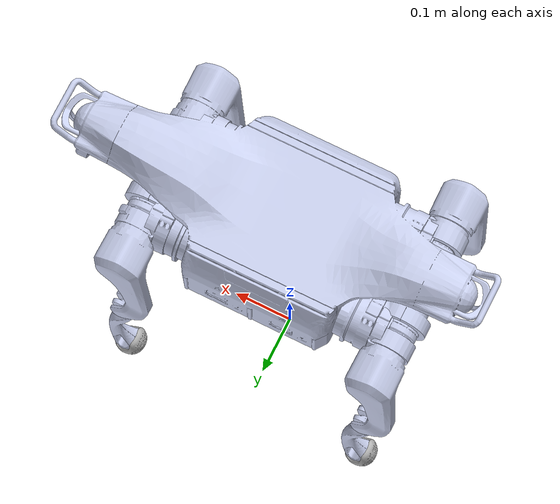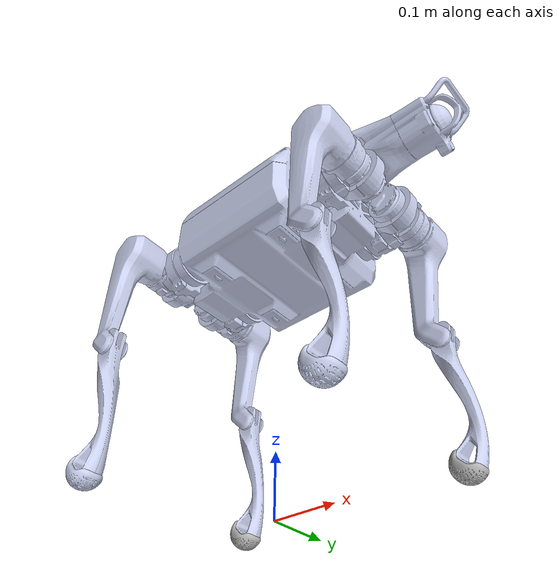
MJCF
<mujoco model="as2">
  <compiler angle="radian" meshdir="./meshes/" />

    <default>
      <default class="hip_joint">
        <joint damping="0.2" armature="0.026" frictionloss="1.0" />
      </default>
      <default class="thigh_joint">
        <joint damping="0.2" armature="0.026" frictionloss="1.0" />
      </default>
      <default class="calf_joint">
        <joint damping="0.5" armature="0.038" frictionloss="2.0" />
      </default>
      <default class="collision">
        <geom group="3" priority="1" condim="6" />
      </default>
      <default class="foot">
      </default>
  </default>

  <asset>
    <mesh name="base_link" content_type="model/stl" file="base_link.STL" />
    <mesh name="FL_hip" content_type="model/stl" file="FL_hip.STL" />
    <mesh name="FL_thigh" content_type="model/stl" file="FL_thigh.STL" />
    <mesh name="FL_calf" content_type="model/stl" file="FL_calf.STL" />
    <mesh name="FL_foot" content_type="model/stl" file="FL_foot.STL" />
    <mesh name="FR_hip" content_type="model/stl" file="FR_hip.STL" />
    <mesh name="FR_thigh" content_type="model/stl" file="FR_thigh.STL" />
    <mesh name="FR_calf" content_type="model/stl" file="FR_calf.STL" />
    <mesh name="FR_foot" content_type="model/stl" file="FR_foot.STL" />
    <mesh name="RL_hip" content_type="model/stl" file="RL_hip.STL" />
    <mesh name="RL_thigh" content_type="model/stl" file="RL_thigh.STL" />
    <mesh name="RL_calf" content_type="model/stl" file="RL_calf.STL" />
    <mesh name="RL_foot" content_type="model/stl" file="RL_foot.STL" />
    <mesh name="RR_hip" content_type="model/stl" file="RR_hip.STL" />
    <mesh name="RR_thigh" content_type="model/stl" file="RR_thigh.STL" />
    <mesh name="RR_calf" content_type="model/stl" file="RR_calf.STL" />
    <mesh name="RR_foot" content_type="model/stl" file="RR_foot.STL" />
  </asset>

  <worldbody>
    <body name="base_link" pos="0 0 0.5">
      <inertial pos="0.045604 -0.0009 0.020368" quat="0.00794069 0.618593 0.00566881 0.785651" mass="8.8" diaginertia="0.152525 0.137384 0.037725" />
      <joint name="floating_base_joint" type="free" />
      <site name="imu" pos="-0.0 0 0.0" />
      <geom type="mesh" contype="0" conaffinity="0" group="1" density="0" rgba="0.79216 0.81961 0.93333 1" mesh="base_link" />
      <geom size="0.1 0.112 0.07" pos="0 0 0.006" type="box" rgba="0.79216 0.81961 0.93333 1" group="3" />
      <geom size="0.043" pos="0.283 0 0.078" rgba="0.79216 0.81961 0.93333 1" group="3" />
      <geom size="0.045 0.03" pos="0.23 0 0.085" quat="0.667463 0 0.744643 0" type="cylinder" rgba="0.79216 0.81961 0.93333 1" group="3" />
      <body name="FL_hip" pos="0.2119 0.06 0">
        <inertial pos="-0.0046547 -0.0088505 3.4235e-05" quat="0.554825 0.563062 0.425623 0.440426" mass="0.695" diaginertia="0.000582434 0.000550283 0.000447303" />
        <joint class="hip_joint" name="FL_hip_joint" pos="0 0 0" axis="1 0 0" range="-0.785 0.785" actuatorfrcrange="-60 60" />
        <geom type="mesh" contype="0" conaffinity="0" group="1" density="0" rgba="0.79216 0.81961 0.93333 1" mesh="FL_hip" />
        <body name="FL_thigh" pos="0 0.1054 0">
          <inertial pos="-0.0060186 -0.024079 -0.0374" quat="0.987997 0.129345 0.0616652 0.0576939" mass="1.25" diaginertia="0.0061413 0.0057051 0.0012124" />
          <joint class="thigh_joint" name="FL_thigh_joint" pos="0 0 0" axis="0 1 0" range="-2 3.492" actuatorfrcrange="-60 60" />
          <geom type="mesh" contype="0" conaffinity="0" group="1" density="0" rgba="0.79216 0.81961 0.93333 1" mesh="FL_thigh" />
          <geom size="0.04 0.05" pos="0 -0.03 0" quat="0.707035 0.707179 0 0" type="cylinder" rgba="0.79216 0.81961 0.93333 1" group="3" />
          <geom size="0.0225 0.015 0.07" pos="-0.02 0 -0.09" quat="0.99875 0 0.0499792 0" type="box" rgba="0.79216 0.81961 0.93333 1" group="3" />
          <geom size="0.005 0.0175 0.02" pos="-0.02 0 -0.21" quat="0.926798 0 -0.375559 0" type="box" rgba="0.79216 0.81961 0.93333 1" group="3" />
          <body name="FL_calf" pos="0 0 -0.212">
            <inertial pos="0.00652661 -6.44517e-08 -0.106839" quat="0.706867 -0.0184087 -0.0184087 0.706867" mass="0.265" diaginertia="0.00175128 0.00172619 5.73076e-05"/>
            <joint class="calf_joint" name="FL_calf_joint" pos="0 0 0" axis="0 1 0" range="-2.7677 -0.8133" actuatorfrcrange="-90 90" />
            <geom type="mesh" contype="0" conaffinity="0" group="1" density="0" rgba="0.79216 0.81961 0.93333 1" mesh="FL_calf" />
            <geom size="0.013 0.025" pos="0.011 0 -0.08" quat="0.989864 0 -0.142018 0" type="cylinder" rgba="0.79216 0.81961 0.93333 1" group="3" />
            <geom size="0.012 0.03" pos="0.0215 0 -0.13" quat="0.99875 0 -0.0499792 0" type="cylinder" rgba="0.79216 0.81961 0.93333 1" group="3" />
            <geom size="0.012 0.0275" pos="0.02 0 -0.185" quat="0.997189 0 0.0749297 0" type="cylinder" rgba="0.79216 0.81961 0.93333 1" group="3" />
            <geom pos="0 0 -0.21344" quat="1 0 0 0" type="mesh" contype="0" conaffinity="0" group="1" density="0" rgba="0.69804 0.69804 0.69804 1" mesh="FL_foot" />
            <geom size="0.028" pos="0 0 -0.21344" rgba="0.69804 0.69804 0.69804 1" group="3" class="foot"/>
          </body>
        </body>
      </body>
      <body name="FR_hip" pos="0.2119 -0.06 0">
        <inertial pos="-0.0046547 0.0088505 3.4234e-05" quat="0.440426 0.425623 0.563062 0.554825" mass="0.695" diaginertia="0.000582434 0.000550283 0.000447303" />
        <joint class="hip_joint" name="FR_hip_joint" pos="0 0 0" axis="1 0 0" range="-0.785 0.785" actuatorfrcrange="-60 60" />
        <geom type="mesh" contype="0" conaffinity="0" group="1" density="0" rgba="0.79216 0.81961 0.93333 1" mesh="FR_hip" />
        <body name="FR_thigh" pos="0 -0.1054 0">
          <inertial pos="-0.0060187 0.02408 -0.037399" quat="0.987996 -0.12935 0.0616633 -0.0577" mass="1.25" diaginertia="0.0061414 0.00570534 0.00121236" />
          <joint class="thigh_joint" name="FR_thigh_joint" pos="0 0 0" axis="0 1 0" range="-2 3.492" actuatorfrcrange="-60 60" />
          <geom type="mesh" contype="0" conaffinity="0" group="1" density="0" rgba="0.79216 0.81961 0.93333 1" mesh="FR_thigh" />
          <geom size="0.04 0.05" pos="0 0.03 0" quat="0.707035 0.707179 0 0" type="cylinder" rgba="0.79216 0.81961 0.93333 1" group="3" />
          <geom size="0.0225 0.015 0.07" pos="-0.02 0 -0.09" quat="0.99875 0 0.0499792 0" type="box" rgba="0.79216 0.81961 0.93333 1" group="3" />
          <geom size="0.005 0.0175 0.02" pos="-0.02 0 -0.21" quat="0.926798 0 -0.375559 0" type="box" rgba="0.79216 0.81961 0.93333 1" group="3" />
          <body name="FR_calf" pos="0 0 -0.212">
            <inertial pos="0.00652661 -7.41026e-08 -0.106839" quat="0.706867 -0.0184087 -0.0184087 0.706867" mass="0.265" diaginertia="0.00175128 0.00172619 5.73076e-05"/>
            <joint class="calf_joint" name="FR_calf_joint" pos="0 0 0" axis="0 1 0" range="-2.7677 -0.8133" actuatorfrcrange="-90 90" />
            <geom type="mesh" contype="0" conaffinity="0" group="1" density="0" rgba="0.79216 0.81961 0.93333 1" mesh="FR_calf" />
            <geom size="0.013 0.025" pos="0.011 0 -0.08" quat="0.989864 0 -0.142018 0" type="cylinder" rgba="0.79216 0.81961 0.93333 1" group="3" />
            <geom size="0.012 0.03" pos="0.0215 0 -0.13" quat="0.99875 0 -0.0499792 0" type="cylinder" rgba="0.79216 0.81961 0.93333 1" group="3" />
            <geom size="0.012 0.0275" pos="0.02 0 -0.185" quat="0.997189 0 0.0749297 0" type="cylinder" rgba="0.79216 0.81961 0.93333 1" group="3" />
            <geom pos="0 0 -0.21344" quat="1 0 0 0" type="mesh" contype="0" conaffinity="0" group="1" density="0" rgba="0.79216 0.81961 0.93333 1" mesh="FR_foot" />
            <geom size="0.028" pos="0 0 -0.21344" rgba="0.79216 0.81961 0.93333 1" group="3" class="foot"/>
          </body>
        </body>
      </body>
      <body name="RL_hip" pos="-0.2119 0.06 0">
        <inertial pos="0.0046637 -0.0088505 -3.8901e-05" quat="0.439127 0.426151 0.562725 0.55579" mass="0.695" diaginertia="0.00058247 0.000550228 0.000447202" />
        <joint class="hip_joint" name="RL_hip_joint" pos="0 0 0" axis="1 0 0" range="-0.785 0.785" actuatorfrcrange="-60 60" />
        <geom type="mesh" contype="0" conaffinity="0" group="1" density="0" rgba="0.79216 0.81961 0.93333 1" mesh="RL_hip" />
        <body name="RL_thigh" pos="0 0.1054 0">
          <inertial pos="-0.0068766 -0.022228 -0.039019" quat="0.990443 0.118947 0.0612549 0.0334983" mass="1.25" diaginertia="0.00621983 0.0058049 0.00118897" />
          <joint class="thigh_joint" name="RL_thigh_joint" pos="0 0 0" axis="0 1 0" range="-1.3 4.19" actuatorfrcrange="-60 60" />
          <geom type="mesh" contype="0" conaffinity="0" group="1" density="0" rgba="0.79216 0.81961 0.93333 1" mesh="RL_thigh" />
          <geom size="0.04 0.05" pos="0 -0.03 0" quat="0.707035 0.707179 0 0" type="cylinder" rgba="0.79216 0.81961 0.93333 1" group="3" />
          <geom size="0.0225 0.015 0.07" pos="-0.02 0 -0.09" quat="0.99875 0 0.0499792 0" type="box" rgba="0.79216 0.81961 0.93333 1" group="3" />
          <geom size="0.005 0.0175 0.02" pos="-0.02 0 -0.21" quat="0.926798 0 -0.375559 0" type="box" rgba="0.79216 0.81961 0.93333 1" group="3" />
          <body name="RL_calf" pos="0 0 -0.212">
            <inertial pos="0.00652661 -6.43322e-08 -0.106839" quat="0.706867 -0.0184087 -0.0184087 0.706867" mass="0.265" diaginertia="0.00175128 0.00172619 5.73076e-05"/>
            <joint class="calf_joint" name="RL_calf_joint" pos="0 0 0" axis="0 1 0" range="-2.7677 -0.8133" actuatorfrcrange="-90 90" />
            <geom type="mesh" contype="0" conaffinity="0" group="1" density="0" rgba="0.79216 0.81961 0.93333 1" mesh="RL_calf" />
            <geom size="0.013 0.025" pos="0.011 0 -0.08" quat="0.989864 0 -0.142018 0" type="cylinder" rgba="0.79216 0.81961 0.93333 1" group="3" />
            <geom size="0.012 0.03" pos="0.0215 0 -0.13" quat="0.99875 0 -0.0499792 0" type="cylinder" rgba="0.79216 0.81961 0.93333 1" group="3" />
            <geom size="0.012 0.0275" pos="0.02 0 -0.185" quat="0.997189 0 0.0749297 0" type="cylinder" rgba="0.79216 0.81961 0.93333 1" group="3" />
            <geom pos="0 0 -0.21344" quat="1 0 0 0" type="mesh" contype="0" conaffinity="0" group="1" density="0" rgba="0.69804 0.69804 0.69804 1" mesh="RL_foot" />
            <geom size="0.028" pos="0 0 -0.21344" rgba="0.69804 0.69804 0.69804 1" group="3" class="foot"/>
          </body>
        </body>
      </body>
      <body name="RR_hip" pos="-0.2119 -0.06 0">
        <inertial pos="0.0046637 0.0088505 -3.89e-05" quat="0.55579 0.562725 0.426151 0.439127" mass="0.695" diaginertia="0.00058247 0.000550228 0.000447202" />
        <joint class="hip_joint" name="RR_hip_joint" pos="0 0 0" axis="1 0 0" range="-0.785 0.785" actuatorfrcrange="-60 60" />
        <geom type="mesh" contype="0" conaffinity="0" group="1" density="0" rgba="0.79216 0.81961 0.93333 1" mesh="RR_hip" />
        <body name="RR_thigh" pos="0 -0.1054 0">
          <inertial pos="-0.0068763 0.022228 -0.039019" quat="0.990443 -0.118945 0.0612534 -0.0335016" mass="1.25" diaginertia="0.00621993 0.00580499 0.00118898" />
          <joint class="thigh_joint" name="RR_thigh_joint" pos="0 0 0" axis="0 1 0" range="-1.3 4.19" actuatorfrcrange="-60 60" />
          <geom type="mesh" contype="0" conaffinity="0" group="1" density="0" rgba="0.79216 0.81961 0.93333 1" mesh="RR_thigh" />
          <geom size="0.04 0.05" pos="0 0.03 0" quat="0.707035 0.707179 0 0" type="cylinder" rgba="0.79216 0.81961 0.93333 1" group="3" />
          <geom size="0.0225 0.015 0.07" pos="-0.02 0 -0.09" quat="0.99875 0 0.0499792 0" type="box" rgba="0.79216 0.81961 0.93333 1" group="3" />
          <geom size="0.005 0.0175 0.02" pos="-0.02 0 -0.21" quat="0.926798 0 -0.375559 0" type="box" rgba="0.79216 0.81961 0.93333 1" group="3" />
          <body name="RR_calf" pos="0 0 -0.212">
            <inertial pos="0.00652661 -7.19383e-08 -0.106839" quat="0.706867 -0.0184087 -0.0184087 0.706867" mass="0.265" diaginertia="0.00175128 0.00172619 5.73076e-05"/>
            <joint class="calf_joint" name="RR_calf_joint" pos="0 0 0" axis="0 1 0" range="-2.7677 -0.8133" actuatorfrcrange="-90 90" />
            <geom type="mesh" contype="0" conaffinity="0" group="1" density="0" rgba="0.79216 0.81961 0.93333 1" mesh="RR_calf" />
            <geom size="0.013 0.025" pos="0.011 0 -0.08" quat="0.989864 0 -0.142018 0" type="cylinder" rgba="0.79216 0.81961 0.93333 1" group="3" />
            <geom size="0.012 0.03" pos="0.0215 0 -0.13" quat="0.99875 0 -0.0499792 0" type="cylinder" rgba="0.79216 0.81961 0.93333 1" group="3" />
            <geom size="0.012 0.0275" pos="0.02 0 -0.185" quat="0.997189 0 0.0749297 0" type="cylinder" rgba="0.79216 0.81961 0.93333 1" group="3" />
            <geom pos="0 0 -0.21344" quat="1 0 0 0" type="mesh" contype="0" conaffinity="0" group="1" density="0" rgba="0.79216 0.81961 0.93333 1" mesh="RR_foot" />
            <geom size="0.028" pos="0 0 -0.21344" rgba="0.79216 0.81961 0.93333 1" group="3" class="foot"/>
          </body>
        </body>
      </body>
    </body>
  </worldbody>
  <actuator>
    <motor ctrlrange="-60 60" name="FR_hip" joint="FR_hip_joint" />
    <motor ctrlrange="-60 60" name="FR_thigh" joint="FR_thigh_joint" />
    <motor ctrlrange="-90 90" name="FR_calf" joint="FR_calf_joint" />
    <motor ctrlrange="-60 60" name="FL_hip" joint="FL_hip_joint" />
    <motor ctrlrange="-60 60" name="FL_thigh" joint="FL_thigh_joint" />
    <motor ctrlrange="-90 90" name="FL_calf" joint="FL_calf_joint" />
    <motor ctrlrange="-60 60" name="RR_hip" joint="RR_hip_joint" />
    <motor ctrlrange="-60 60" name="RR_thigh" joint="RR_thigh_joint" />
    <motor ctrlrange="-90 90" name="RR_calf" joint="RR_calf_joint" />
    <motor ctrlrange="-60 60" name="RL_hip" joint="RL_hip_joint" />
    <motor ctrlrange="-60 60" name="RL_thigh" joint="RL_thigh_joint" />
    <motor ctrlrange="-90 90" name="RL_calf" joint="RL_calf_joint" />
  </actuator>

  <sensor>
    <jointpos name="FR_hip_pos" joint="FR_hip_joint" />
    <jointpos name="FR_thigh_pos" joint="FR_thigh_joint" />
    <jointpos name="FR_calf_pos" joint="FR_calf_joint" />
    <jointpos name="FL_hip_pos" joint="FL_hip_joint" />
    <jointpos name="FL_thigh_pos" joint="FL_thigh_joint" />
    <jointpos name="FL_calf_pos" joint="FL_calf_joint" />
    <jointpos name="RR_hip_pos" joint="RR_hip_joint" />
    <jointpos name="RR_thigh_pos" joint="RR_thigh_joint" />
    <jointpos name="RR_calf_pos" joint="RR_calf_joint" />
    <jointpos name="RL_hip_pos" joint="RL_hip_joint" />
    <jointpos name="RL_thigh_pos" joint="RL_thigh_joint" />
    <jointpos name="RL_calf_pos" joint="RL_calf_joint" />

    <jointvel name="FR_hip_vel" joint="FR_hip_joint" />
    <jointvel name="FR_thigh_vel" joint="FR_thigh_joint" />
    <jointvel name="FR_calf_vel" joint="FR_calf_joint" />
    <jointvel name="FL_hip_vel" joint="FL_hip_joint" />
    <jointvel name="FL_thigh_vel" joint="FL_thigh_joint" />
    <jointvel name="FL_calf_vel" joint="FL_calf_joint" />
    <jointvel name="RR_hip_vel" joint="RR_hip_joint" />
    <jointvel name="RR_thigh_vel" joint="RR_thigh_joint" />
    <jointvel name="RR_calf_vel" joint="RR_calf_joint" />
    <jointvel name="RL_hip_vel" joint="RL_hip_joint" />
    <jointvel name="RL_thigh_vel" joint="RL_thigh_joint" />
    <jointvel name="RL_calf_vel" joint="RL_calf_joint" />

    <jointactuatorfrc name="FR_hip_torque" joint="FR_hip_joint" />
    <jointactuatorfrc name="FR_thigh_torque" joint="FR_thigh_joint"/>
    <jointactuatorfrc name="FR_calf_torque" joint="FR_calf_joint"/>
    <jointactuatorfrc name="FL_hip_torque" joint="FL_hip_joint"/>
    <jointactuatorfrc name="FL_thigh_torque" joint="FL_thigh_joint"/>
    <jointactuatorfrc name="FL_calf_torque" joint="FL_calf_joint"/>
    <jointactuatorfrc name="RR_hip_torque" joint="RR_hip_joint"/>
    <jointactuatorfrc name="RR_thigh_torque" joint="RR_thigh_joint"/>
    <jointactuatorfrc name="RR_calf_torque" joint="RR_calf_joint"/>
    <jointactuatorfrc name="RL_hip_torque" joint="RL_hip_joint"/>
    <jointactuatorfrc name="RL_thigh_torque" joint="RL_thigh_joint"/>
    <jointactuatorfrc name="RL_calf_torque" joint="RL_calf_joint"/>

    <framequat name="imu_quat" objtype="site" objname="imu"/>
    <gyro name="imu_gyro" site="imu"/>
    <accelerometer name="imu_acc" site="imu"/>

    <framepos name="frame_pos" objtype="site" objname="imu" />
    <framelinvel name="frame_vel" objtype="site" objname="imu" />
  </sensor>
</mujoco>
